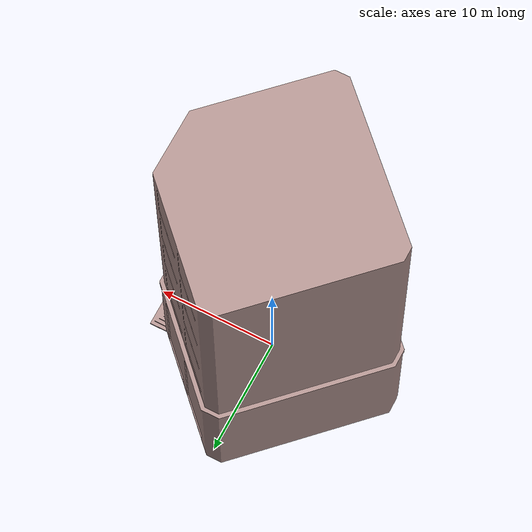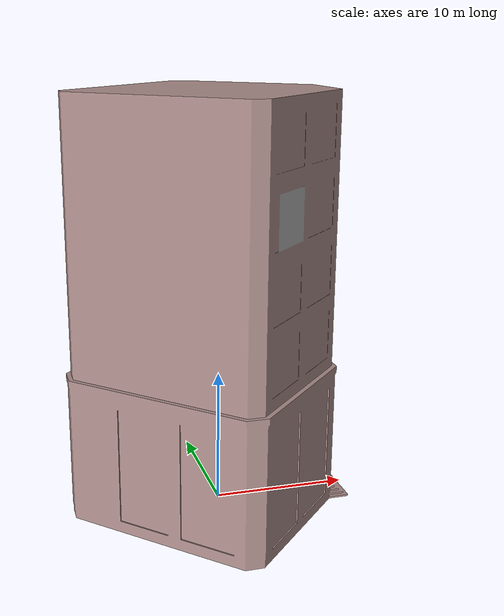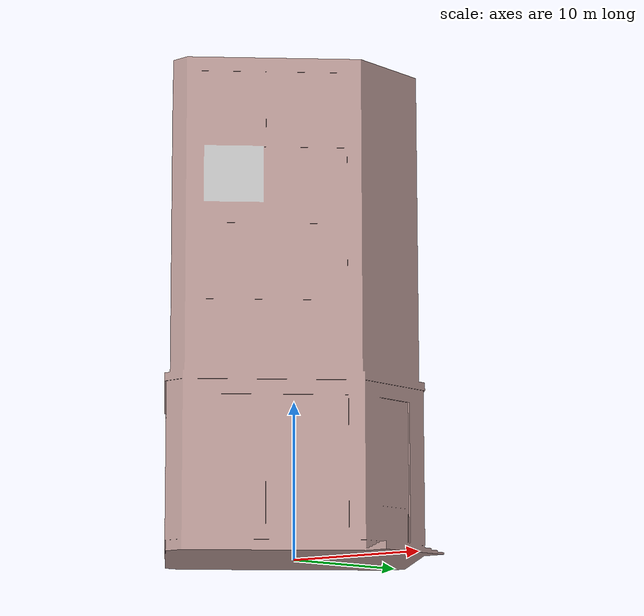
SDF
<?xml version="1.0" ?>
<sdf version="1.5">
  <model name="Building">
    <static>true</static>
    <link name="link">
      <collision name="collision">
        <geometry>
          <mesh>
            <uri>model://building/meshes/building.dae</uri>
            <scale>1 1 1</scale>
          </mesh>
        </geometry>
      </collision>
      <visual name="visual">
        <geometry>
          <mesh>
            <uri>model://building/meshes/building.dae</uri>
            <scale>1 1 1</scale>
          </mesh>
        </geometry>
      </visual>
    </link>
  </model>
</sdf>
